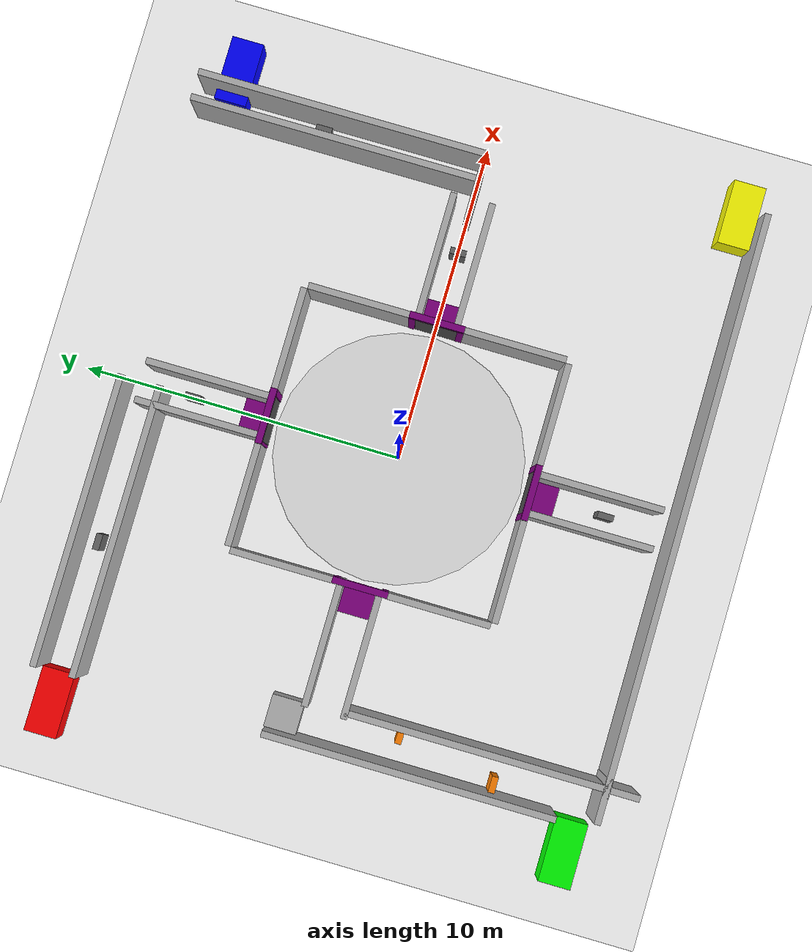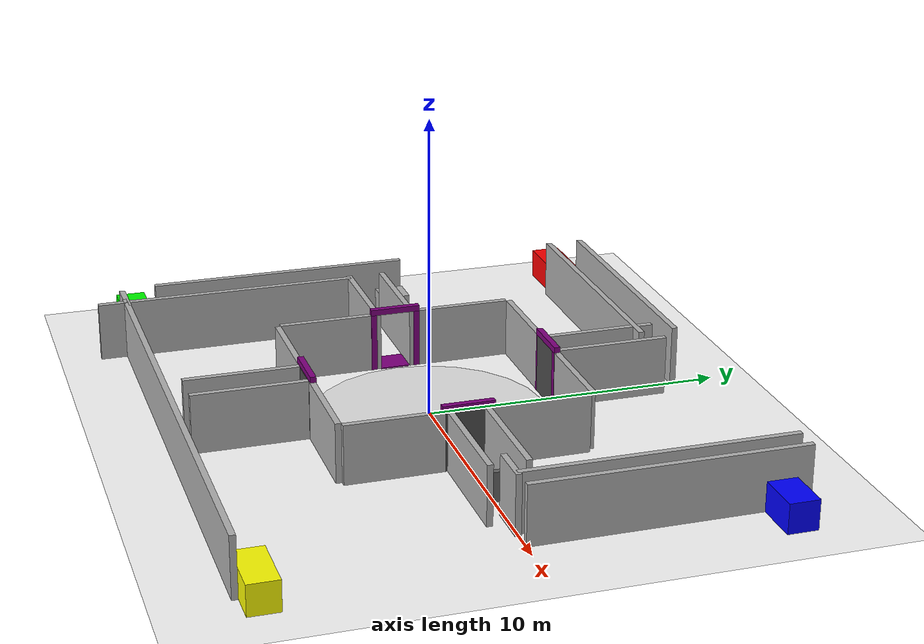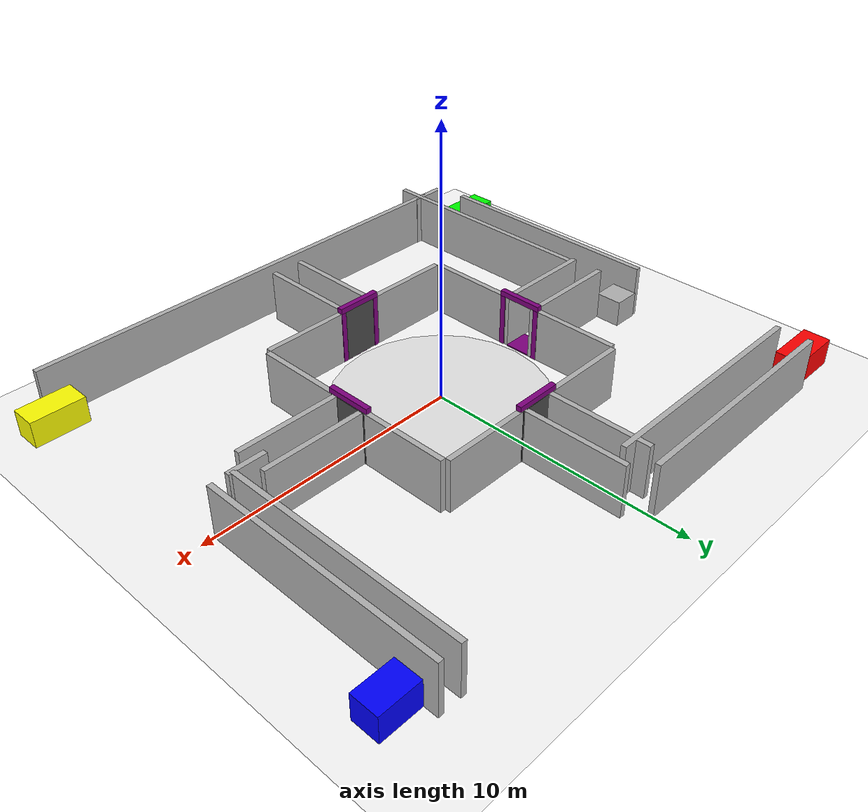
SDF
<?xml version="1.0" ?>
<sdf version='1.7'>
  <world name='laberinto_v1_world'>
    <plugin name='gz::sim::systems::Physics' filename='gz-sim-physics-system'/>
    <plugin name='gz::sim::systems::UserCommands' filename='gz-sim-user-commands-system'/>
    <plugin name='gz::sim::systems::SceneBroadcaster' filename='gz-sim-scene-broadcaster-system'/>
    <plugin name='gz::sim::systems::Imu' filename='gz-sim-imu-system'/>
    <plugin name='gz::sim::systems::Sensors' filename='gz-sim-sensors-system'>
      <render_engine>ogre2</render_engine>
    </plugin>
    <gravity>0 0 -9.8000000000000007</gravity>
    <magnetic_field>5.5644999999999998e-06 2.2875799999999999e-05 -4.2388400000000002e-05</magnetic_field>
    <atmosphere type='adiabatic'/>
    <physics type='ode'>
      <max_step_size>0.001</max_step_size>
      <real_time_factor>1</real_time_factor>
      <real_time_update_rate>1000</real_time_update_rate>
    </physics>
    <scene>
      <ambient>0.400000006 0.400000006 0.400000006 1</ambient>
      <background>0.699999988 0.699999988 0.699999988 1</background>
      <shadows>true</shadows>
    </scene>
    <model name='white_floor'>
      <static>true</static>
      <pose>0 0 0 0 0 0</pose>
      <link name='floor_link'>
        <collision name='collision'>
          <geometry>
            <plane>
              <normal>0 0 1</normal>
              <size>40 40</size>
            </plane>
          </geometry>
          <surface>
            <friction>
              <ode/>
            </friction>
            <bounce/>
            <contact/>
          </surface>
        </collision>
        <visual name='visual'>
          <geometry>
            <plane>
              <normal>0 0 1</normal>
              <size>40 40</size>
            </plane>
          </geometry>
          <material>
            <ambient>1 1 1 1</ambient>
            <diffuse>1 1 1 1</diffuse>
            <specular>0.100000001 0.100000001 0.100000001 1</specular>
          </material>
        </visual>
        <pose>0 0 0 0 0 0</pose>
        <inertial>
          <pose>0 0 0 0 0 0</pose>
          <mass>1</mass>
          <inertia>
            <ixx>1</ixx>
            <ixy>0</ixy>
            <ixz>0</ixz>
            <iyy>1</iyy>
            <iyz>0</iyz>
            <izz>1</izz>
          </inertia>
        </inertial>
        <enable_wind>false</enable_wind>
      </link>
      <self_collide>false</self_collide>
    </model>
    <model name='central_wall_north_left'>
      <static>true</static>
      <pose>-2.375 4.0999999999999996 1 0 0 0</pose>
      <link name='link'>
        <collision name='collision'>
          <geometry>
            <box>
              <size>3.25 0.20000000000000001 2</size>
            </box>
          </geometry>
          <surface>
            <friction>
              <ode/>
            </friction>
            <bounce/>
            <contact/>
          </surface>
        </collision>
        <visual name='visual'>
          <geometry>
            <box>
              <size>3.25 0.20000000000000001 2</size>
            </box>
          </geometry>
          <material>
            <ambient>0.699999988 0.699999988 0.699999988 1</ambient>
            <diffuse>0.699999988 0.699999988 0.699999988 1</diffuse>
          </material>
        </visual>
        <pose>0 0 0 0 0 0</pose>
        <inertial>
          <pose>0 0 0 0 0 0</pose>
          <mass>1</mass>
          <inertia>
            <ixx>1</ixx>
            <ixy>0</ixy>
            <ixz>0</ixz>
            <iyy>1</iyy>
            <iyz>0</iyz>
            <izz>1</izz>
          </inertia>
        </inertial>
        <enable_wind>false</enable_wind>
      </link>
      <self_collide>false</self_collide>
    </model>
    <model name='central_wall_north_right'>
      <static>true</static>
      <pose>2.375 4.0999999999999996 1 0 0 0</pose>
      <link name='link'>
        <collision name='collision'>
          <geometry>
            <box>
              <size>3.25 0.20000000000000001 2</size>
            </box>
          </geometry>
          <surface>
            <friction>
              <ode/>
            </friction>
            <bounce/>
            <contact/>
          </surface>
        </collision>
        <visual name='visual'>
          <geometry>
            <box>
              <size>3.25 0.20000000000000001 2</size>
            </box>
          </geometry>
          <material>
            <ambient>0.699999988 0.699999988 0.699999988 1</ambient>
            <diffuse>0.699999988 0.699999988 0.699999988 1</diffuse>
          </material>
        </visual>
        <pose>0 0 0 0 0 0</pose>
        <inertial>
          <pose>0 0 0 0 0 0</pose>
          <mass>1</mass>
          <inertia>
            <ixx>1</ixx>
            <ixy>0</ixy>
            <ixz>0</ixz>
            <iyy>1</iyy>
            <iyz>0</iyz>
            <izz>1</izz>
          </inertia>
        </inertial>
        <enable_wind>false</enable_wind>
      </link>
      <self_collide>false</self_collide>
    </model>
    <model name='central_wall_south_left'>
      <static>true</static>
      <pose>-2.375 -4.0999999999999996 1 0 0 0</pose>
      <link name='link'>
        <collision name='collision'>
          <geometry>
            <box>
              <size>3.25 0.20000000000000001 2</size>
            </box>
          </geometry>
          <surface>
            <friction>
              <ode/>
            </friction>
            <bounce/>
            <contact/>
          </surface>
        </collision>
        <visual name='visual'>
          <geometry>
            <box>
              <size>3.25 0.20000000000000001 2</size>
            </box>
          </geometry>
          <material>
            <ambient>0.699999988 0.699999988 0.699999988 1</ambient>
            <diffuse>0.699999988 0.699999988 0.699999988 1</diffuse>
          </material>
        </visual>
        <pose>0 0 0 0 0 0</pose>
        <inertial>
          <pose>0 0 0 0 0 0</pose>
          <mass>1</mass>
          <inertia>
            <ixx>1</ixx>
            <ixy>0</ixy>
            <ixz>0</ixz>
            <iyy>1</iyy>
            <iyz>0</iyz>
            <izz>1</izz>
          </inertia>
        </inertial>
        <enable_wind>false</enable_wind>
      </link>
      <self_collide>false</self_collide>
    </model>
    <model name='central_wall_south_right'>
      <static>true</static>
      <pose>2.375 -4.0999999999999996 1 0 0 0</pose>
      <link name='link'>
        <collision name='collision'>
          <geometry>
            <box>
              <size>3.25 0.20000000000000001 2</size>
            </box>
          </geometry>
          <surface>
            <friction>
              <ode/>
            </friction>
            <bounce/>
            <contact/>
          </surface>
        </collision>
        <visual name='visual'>
          <geometry>
            <box>
              <size>3.25 0.20000000000000001 2</size>
            </box>
          </geometry>
          <material>
            <ambient>0.699999988 0.699999988 0.699999988 1</ambient>
            <diffuse>0.699999988 0.699999988 0.699999988 1</diffuse>
          </material>
        </visual>
        <pose>0 0 0 0 0 0</pose>
        <inertial>
          <pose>0 0 0 0 0 0</pose>
          <mass>1</mass>
          <inertia>
            <ixx>1</ixx>
            <ixy>0</ixy>
            <ixz>0</ixz>
            <iyy>1</iyy>
            <iyz>0</iyz>
            <izz>1</izz>
          </inertia>
        </inertial>
        <enable_wind>false</enable_wind>
      </link>
      <self_collide>false</self_collide>
    </model>
    <model name='central_wall_east_bottom'>
      <static>true</static>
      <pose>4.0999999999999996 -2.375 1 0 0 0</pose>
      <link name='link'>
        <collision name='collision'>
          <geometry>
            <box>
              <size>0.20000000000000001 3.25 2</size>
            </box>
          </geometry>
          <surface>
            <friction>
              <ode/>
            </friction>
            <bounce/>
            <contact/>
          </surface>
        </collision>
        <visual name='visual'>
          <geometry>
            <box>
              <size>0.20000000000000001 3.25 2</size>
            </box>
          </geometry>
          <material>
            <ambient>0.699999988 0.699999988 0.699999988 1</ambient>
            <diffuse>0.699999988 0.699999988 0.699999988 1</diffuse>
          </material>
        </visual>
        <pose>0 0 0 0 0 0</pose>
        <inertial>
          <pose>0 0 0 0 0 0</pose>
          <mass>1</mass>
          <inertia>
            <ixx>1</ixx>
            <ixy>0</ixy>
            <ixz>0</ixz>
            <iyy>1</iyy>
            <iyz>0</iyz>
            <izz>1</izz>
          </inertia>
        </inertial>
        <enable_wind>false</enable_wind>
      </link>
      <self_collide>false</self_collide>
    </model>
    <model name='central_wall_east_top'>
      <static>true</static>
      <pose>4.0999999999999996 2.375 1 0 0 0</pose>
      <link name='link'>
        <collision name='collision'>
          <geometry>
            <box>
              <size>0.20000000000000001 3.25 2</size>
            </box>
          </geometry>
          <surface>
            <friction>
              <ode/>
            </friction>
            <bounce/>
            <contact/>
          </surface>
        </collision>
        <visual name='visual'>
          <geometry>
            <box>
              <size>0.20000000000000001 3.25 2</size>
            </box>
          </geometry>
          <material>
            <ambient>0.699999988 0.699999988 0.699999988 1</ambient>
            <diffuse>0.699999988 0.699999988 0.699999988 1</diffuse>
          </material>
        </visual>
        <pose>0 0 0 0 0 0</pose>
        <inertial>
          <pose>0 0 0 0 0 0</pose>
          <mass>1</mass>
          <inertia>
            <ixx>1</ixx>
            <ixy>0</ixy>
            <ixz>0</ixz>
            <iyy>1</iyy>
            <iyz>0</iyz>
            <izz>1</izz>
          </inertia>
        </inertial>
        <enable_wind>false</enable_wind>
      </link>
      <self_collide>false</self_collide>
    </model>
    <model name='central_wall_west_bottom'>
      <static>true</static>
      <pose>-4.0999999999999996 -2.375 1 0 0 0</pose>
      <link name='link'>
        <collision name='collision'>
          <geometry>
            <box>
              <size>0.20000000000000001 3.25 2</size>
            </box>
          </geometry>
          <surface>
            <friction>
              <ode/>
            </friction>
            <bounce/>
            <contact/>
          </surface>
        </collision>
        <visual name='visual'>
          <geometry>
            <box>
              <size>0.20000000000000001 3.25 2</size>
            </box>
          </geometry>
          <material>
            <ambient>0.699999988 0.699999988 0.699999988 1</ambient>
            <diffuse>0.699999988 0.699999988 0.699999988 1</diffuse>
          </material>
        </visual>
        <pose>0 0 0 0 0 0</pose>
        <inertial>
          <pose>0 0 0 0 0 0</pose>
          <mass>1</mass>
          <inertia>
            <ixx>1</ixx>
            <ixy>0</ixy>
            <ixz>0</ixz>
            <iyy>1</iyy>
            <iyz>0</iyz>
            <izz>1</izz>
          </inertia>
        </inertial>
        <enable_wind>false</enable_wind>
      </link>
      <self_collide>false</self_collide>
    </model>
    <model name='central_wall_west_top'>
      <static>true</static>
      <pose>-4.0999999999999996 2.375 1 0 0 0</pose>
      <link name='link'>
        <collision name='collision'>
          <geometry>
            <box>
              <size>0.20000000000000001 3.25 2</size>
            </box>
          </geometry>
          <surface>
            <friction>
              <ode/>
            </friction>
            <bounce/>
            <contact/>
          </surface>
        </collision>
        <visual name='visual'>
          <geometry>
            <box>
              <size>0.20000000000000001 3.25 2</size>
            </box>
          </geometry>
          <material>
            <ambient>0.699999988 0.699999988 0.699999988 1</ambient>
            <diffuse>0.699999988 0.699999988 0.699999988 1</diffuse>
          </material>
        </visual>
        <pose>0 0 0 0 0 0</pose>
        <inertial>
          <pose>0 0 0 0 0 0</pose>
          <mass>1</mass>
          <inertia>
            <ixx>1</ixx>
            <ixy>0</ixy>
            <ixz>0</ixz>
            <iyy>1</iyy>
            <iyz>0</iyz>
            <izz>1</izz>
          </inertia>
        </inertial>
        <enable_wind>false</enable_wind>
      </link>
      <self_collide>false</self_collide>
    </model>
    <model name='door_north'>
      <static>true</static>
      <pose>0 4.0999999046325684 1 0 0 1.5960153092038378</pose>
      <link name='link'>
        <collision name='collision'>
          <geometry>
            <box>
              <size>0.20000000000000001 1.5 2</size>
            </box>
          </geometry>
          <surface>
            <friction>
              <ode/>
            </friction>
            <bounce/>
            <contact/>
          </surface>
        </collision>
        <visual name='visual'>
          <geometry>
            <box>
              <size>0.20000000000000001 1.5 2</size>
            </box>
          </geometry>
          <material>
            <ambient>0.300000012 0.300000012 0.300000012 1</ambient>
            <diffuse>0.300000012 0.300000012 0.300000012 1</diffuse>
          </material>
        </visual>
        <pose>0 0 0 0 0 0</pose>
        <inertial>
          <pose>0 0 0 0 0 0</pose>
          <mass>1</mass>
          <inertia>
            <ixx>1</ixx>
            <ixy>0</ixy>
            <ixz>0</ixz>
            <iyy>1</iyy>
            <iyz>0</iyz>
            <izz>1</izz>
          </inertia>
        </inertial>
        <enable_wind>false</enable_wind>
      </link>
      <self_collide>false</self_collide>
    </model>
    <model name='door_south'>
      <static>true</static>
      <pose>0 -4.0999999046325684 1 0 0 1.5739049109720806</pose>
      <link name='link'>
        <collision name='collision'>
          <geometry>
            <box>
              <size>0.20000000000000001 1.5 2</size>
            </box>
          </geometry>
          <surface>
            <friction>
              <ode/>
            </friction>
            <bounce/>
            <contact/>
          </surface>
        </collision>
        <visual name='visual'>
          <geometry>
            <box>
              <size>0.20000000000000001 1.5 2</size>
            </box>
          </geometry>
          <material>
            <ambient>0.300000012 0.300000012 0.300000012 1</ambient>
            <diffuse>0.300000012 0.300000012 0.300000012 1</diffuse>
          </material>
        </visual>
        <pose>0 0 0 0 0 0</pose>
        <inertial>
          <pose>0 0 0 0 0 0</pose>
          <mass>1</mass>
          <inertia>
            <ixx>1</ixx>
            <ixy>0</ixy>
            <ixz>0</ixz>
            <iyy>1</iyy>
            <iyz>0</iyz>
            <izz>1</izz>
          </inertia>
        </inertial>
        <enable_wind>false</enable_wind>
      </link>
      <self_collide>false</self_collide>
    </model>
    <model name='door_east'>
      <static>true</static>
      <pose>4.0999999046325684 0 1 0 0 -0.011448291346638821</pose>
      <link name='link'>
        <collision name='collision'>
          <geometry>
            <box>
              <size>0.20000000000000001 1.5 2</size>
            </box>
          </geometry>
          <surface>
            <friction>
              <ode/>
            </friction>
            <bounce/>
            <contact/>
          </surface>
        </collision>
        <visual name='visual'>
          <geometry>
            <box>
              <size>0.20000000000000001 1.5 2</size>
            </box>
          </geometry>
          <material>
            <ambient>0.300000012 0.300000012 0.300000012 1</ambient>
            <diffuse>0.300000012 0.300000012 0.300000012 1</diffuse>
          </material>
        </visual>
        <pose>0 0 0 0 0 0</pose>
        <inertial>
          <pose>0 0 0 0 0 0</pose>
          <mass>1</mass>
          <inertia>
            <ixx>1</ixx>
            <ixy>0</ixy>
            <ixz>0</ixz>
            <iyy>1</iyy>
            <iyz>0</iyz>
            <izz>1</izz>
          </inertia>
        </inertial>
        <enable_wind>false</enable_wind>
      </link>
      <self_collide>false</self_collide>
    </model>
    <model name='central_room_floor_visual'>
      <static>true</static>
      <pose>0 0 0.01 0 0 0</pose>
      <link name='link'>
        <visual name='visual'>
          <geometry>
            <cylinder>
              <radius>3.8999999999999999</radius>
              <length>0.01</length>
            </cylinder>
          </geometry>
          <material>
            <ambient>0.899999976 0.899999976 0.899999976 1</ambient>
            <diffuse>0.899999976 0.899999976 0.899999976 1</diffuse>
          </material>
        </visual>
        <pose>0 0 0 0 0 0</pose>
        <inertial>
          <pose>0 0 0 0 0 0</pose>
          <mass>1</mass>
          <inertia>
            <ixx>1</ixx>
            <ixy>0</ixy>
            <ixz>0</ixz>
            <iyy>1</iyy>
            <iyz>0</iyz>
            <izz>1</izz>
          </inertia>
        </inertial>
        <enable_wind>false</enable_wind>
      </link>
      <self_collide>false</self_collide>
    </model>
    <model name='purple_carpet_north'>
      <static>true</static>
      <pose>0 4.5239 -0.0097 0 0 0</pose>
      <link name='link'>
        <collision name='collision'>
          <geometry>
            <box>
              <size>1.0 1.0 0.05</size>
            </box>
          </geometry>
          <surface>
            <friction>
              <ode/>
            </friction>
            <bounce/>
            <contact/>
          </surface>
        </collision>
        <visual name='visual'>
          <geometry>
            <box>
              <size>1.0 1.0 0.05</size>
            </box>
          </geometry>
          <material>
            <ambient>0.5 0 0.5 1</ambient>
            <diffuse>0.5 0 0.5 1</diffuse>
          </material>
        </visual>
        <pose>0 0 0 0 0 0</pose>
        <inertial>
          <pose>0 0 0 0 0 0</pose>
          <mass>1</mass>
          <inertia>
            <ixx>1</ixx>
            <ixy>0</ixy>
            <ixz>0</ixz>
            <iyy>1</iyy>
            <iyz>0</iyz>
            <izz>1</izz>
          </inertia>
        </inertial>
        <enable_wind>false</enable_wind>
      </link>
      <self_collide>false</self_collide>
    </model>
    <model name='purple_carpet_south'>
      <static>true</static>
      <pose>0 -4.5239 -0.0097 0 0 0</pose>
      <link name='link'>
        <collision name='collision'>
          <geometry>
            <box>
              <size>1.0 1.0 0.05</size>
            </box>
          </geometry>
          <surface>
            <friction>
              <ode/>
            </friction>
            <bounce/>
            <contact/>
          </surface>
        </collision>
        <visual name='visual'>
          <geometry>
            <box>
              <size>1.0 1.0 0.05</size>
            </box>
          </geometry>
          <material>
            <ambient>0.5 0 0.5 1</ambient>
            <diffuse>0.5 0 0.5 1</diffuse>
          </material>
        </visual>
        <pose>0 0 0 0 0 0</pose>
        <inertial>
          <pose>0 0 0 0 0 0</pose>
          <mass>1</mass>
          <inertia>
            <ixx>1</ixx>
            <ixy>0</ixy>
            <ixz>0</ixz>
            <iyy>1</iyy>
            <iyz>0</iyz>
            <izz>1</izz>
          </inertia>
        </inertial>
        <enable_wind>false</enable_wind>
      </link>
      <self_collide>false</self_collide>
    </model>
    <model name='purple_carpet_east'>
      <static>true</static>
      <pose>4.5239 0 -0.0097 0 0 0</pose>
      <link name='link'>
        <collision name='collision'>
          <geometry>
            <box>
              <size>1.0 1.0 0.05</size>
            </box>
          </geometry>
        </collision>
        <visual name='visual'>
          <geometry>
            <box>
              <size>1.0 1.0 0.05</size>
            </box>
          </geometry>
          <material>
            <ambient>0.5 0 0.5 1</ambient>
            <diffuse>0.5 0 0.5 1</diffuse>
          </material>
        </visual>
      </link>
      <self_collide>false</self_collide>
    </model>
    <model name='purple_carpet_west'>
      <static>true</static>
      <pose>-4.5239 0 -0.0097 0 0 0</pose>
      <link name='link'>
        <collision name='collision'>
          <geometry>
            <box>
              <size>1.0 1.0 0.05</size>
            </box>
          </geometry>
        </collision>
        <visual name='visual'>
          <geometry>
            <box>
              <size>1.0 1.0 0.05</size>
            </box>
          </geometry>
          <material>
            <ambient>0.5 0 0.5 1</ambient>
            <diffuse>0.5 0 0.5 1</diffuse>
          </material>
        </visual>
      </link>
      <self_collide>false</self_collide>
    </model>
    <model name='roman_arch_north'>
      <static>true</static>
      <pose>0 4.0841 0 0 0 0</pose>
      <link name='pillar_left'>
        <pose>-0.75 0 1.0 0 0 0</pose>
        <collision name='collision'>
          <geometry>
            <box>
              <size>0.2 0.2 2.0</size>
            </box>
          </geometry>
        </collision>
        <visual name='visual'>
          <geometry>
            <box>
              <size>0.2 0.2 2.0</size>
            </box>
          </geometry>
          <material>
            <ambient>0.5 0 0.5 1</ambient>
            <diffuse>0.5 0 0.5 1</diffuse>
          </material>
        </visual>
      </link>
      <link name='pillar_right'>
        <pose>0.75 0 1.0 0 0 0</pose>
        <collision name='collision'>
          <geometry>
            <box>
              <size>0.2 0.2 2.0</size>
            </box>
          </geometry>
        </collision>
        <visual name='visual'>
          <geometry>
            <box>
              <size>0.2 0.2 2.0</size>
            </box>
          </geometry>
          <material>
            <ambient>0.5 0 0.5 1</ambient>
            <diffuse>0.5 0 0.5 1</diffuse>
          </material>
        </visual>
      </link>
      <link name='arch_top'>
        <pose>0 0 2.1 0 0 0</pose>
        <collision name='collision'>
          <geometry>
            <box>
              <size>1.7 0.2 0.2</size>
            </box>
          </geometry>
        </collision>
        <visual name='visual'>
          <geometry>
            <box>
              <size>1.7 0.2 0.2</size>
            </box>
          </geometry>
          <material>
            <ambient>0.5 0 0.5 1</ambient>
            <diffuse>0.5 0 0.5 1</diffuse>
          </material>
        </visual>
      </link>
      <self_collide>false</self_collide>
    </model>
    <model name='roman_arch_south'>
      <static>true</static>
      <pose>0 -4.0841 0 0 0 0</pose>
      <link name='pillar_left'>
        <pose>-0.75 0 1.0 0 0 0</pose>
        <collision name='collision'>
          <geometry>
            <box>
              <size>0.2 0.2 2.0</size>
            </box>
          </geometry>
        </collision>
        <visual name='visual'>
          <geometry>
            <box>
              <size>0.2 0.2 2.0</size>
            </box>
          </geometry>
          <material>
            <ambient>0.5 0 0.5 1</ambient>
            <diffuse>0.5 0 0.5 1</diffuse>
          </material>
        </visual>
      </link>
      <link name='pillar_right'>
        <pose>0.75 0 1.0 0 0 0</pose>
        <collision name='collision'>
          <geometry>
            <box>
              <size>0.2 0.2 2.0</size>
            </box>
          </geometry>
        </collision>
        <visual name='visual'>
          <geometry>
            <box>
              <size>0.2 0.2 2.0</size>
            </box>
          </geometry>
          <material>
            <ambient>0.5 0 0.5 1</ambient>
            <diffuse>0.5 0 0.5 1</diffuse>
          </material>
        </visual>
      </link>
      <link name='arch_top'>
        <pose>0 0 2.1 0 0 0</pose>
        <collision name='collision'>
          <geometry>
            <box>
              <size>1.7 0.2 0.2</size>
            </box>
          </geometry>
        </collision>
        <visual name='visual'>
          <geometry>
            <box>
              <size>1.7 0.2 0.2</size>
            </box>
          </geometry>
          <material>
            <ambient>0.5 0 0.5 1</ambient>
            <diffuse>0.5 0 0.5 1</diffuse>
          </material>
        </visual>
      </link>
      <self_collide>false</self_collide>
    </model>
    <model name='roman_arch_east'>
      <static>true</static>
      <pose>4.0841 0 0 0 0 1.5708</pose>
      <link name='pillar_left'>
        <pose>-0.75 0 1.0 0 0 0</pose>
        <collision name='collision'>
          <geometry>
            <box>
              <size>0.2 0.2 2.0</size>
            </box>
          </geometry>
        </collision>
        <visual name='visual'>
          <geometry>
            <box>
              <size>0.2 0.2 2.0</size>
            </box>
          </geometry>
          <material>
            <ambient>0.5 0 0.5 1</ambient>
            <diffuse>0.5 0 0.5 1</diffuse>
          </material>
        </visual>
      </link>
      <link name='pillar_right'>
        <pose>0.75 0 1.0 0 0 0</pose>
        <collision name='collision'>
          <geometry>
            <box>
              <size>0.2 0.2 2.0</size>
            </box>
          </geometry>
        </collision>
        <visual name='visual'>
          <geometry>
            <box>
              <size>0.2 0.2 2.0</size>
            </box>
          </geometry>
          <material>
            <ambient>0.5 0 0.5 1</ambient>
            <diffuse>0.5 0 0.5 1</diffuse>
          </material>
        </visual>
      </link>
      <link name='arch_top'>
        <pose>0 0 2.1 0 0 0</pose>
        <collision name='collision'>
          <geometry>
            <box>
              <size>1.7 0.2 0.2</size>
            </box>
          </geometry>
        </collision>
        <visual name='visual'>
          <geometry>
            <box>
              <size>1.7 0.2 0.2</size>
            </box>
          </geometry>
          <material>
            <ambient>0.5 0 0.5 1</ambient>
            <diffuse>0.5 0 0.5 1</diffuse>
          </material>
        </visual>
      </link>
      <self_collide>false</self_collide>
    </model>
    <model name='roman_arch_west'>
      <static>true</static>
      <pose>-4.0841 0 0 0 0 1.5708</pose>
      <link name='pillar_left'>
        <pose>-0.75 0 1.0 0 0 0</pose>
        <collision name='collision'>
          <geometry>
            <box>
              <size>0.2 0.2 2.0</size>
            </box>
          </geometry>
        </collision>
        <visual name='visual'>
          <geometry>
            <box>
              <size>0.2 0.2 2.0</size>
            </box>
          </geometry>
          <material>
            <ambient>0.5 0 0.5 1</ambient>
            <diffuse>0.5 0 0.5 1</diffuse>
          </material>
        </visual>
      </link>
      <link name='pillar_right'>
        <pose>0.75 0 1.0 0 0 0</pose>
        <collision name='collision'>
          <geometry>
            <box>
              <size>0.2 0.2 2.0</size>
            </box>
          </geometry>
        </collision>
        <visual name='visual'>
          <geometry>
            <box>
              <size>0.2 0.2 2.0</size>
            </box>
          </geometry>
          <material>
            <ambient>0.5 0 0.5 1</ambient>
            <diffuse>0.5 0 0.5 1</diffuse>
          </material>
        </visual>
      </link>
      <link name='arch_top'>
        <pose>0 0 2.1 0 0 0</pose>
        <collision name='collision'>
          <geometry>
            <box>
              <size>1.7 0.2 0.2</size>
            </box>
          </geometry>
        </collision>
        <visual name='visual'>
          <geometry>
            <box>
              <size>1.7 0.2 0.2</size>
            </box>
          </geometry>
          <material>
            <ambient>0.5 0 0.5 1</ambient>
            <diffuse>0.5 0 0.5 1</diffuse>
          </material>
        </visual>
      </link>
      <self_collide>false</self_collide>
    </model>
    <model name='hall_N_seg1_wall_W'>
      <static>true</static>
      <pose>-0.59999999999999998 6.0499999999999998 1 0 0 0</pose>
      <link name='link'>
        <collision name='collision'>
          <geometry>
            <box>
              <size>0.20000000000000001 3.8999999999999999 2</size>
            </box>
          </geometry>
          <surface>
            <friction>
              <ode/>
            </friction>
            <bounce/>
            <contact/>
          </surface>
        </collision>
        <visual name='visual'>
          <geometry>
            <box>
              <size>0.20000000000000001 3.8999999999999999 2</size>
            </box>
          </geometry>
          <material>
            <ambient>0.699999988 0.699999988 0.699999988 1</ambient>
            <diffuse>0.699999988 0.699999988 0.699999988 1</diffuse>
          </material>
        </visual>
        <pose>0 0 0 0 0 0</pose>
        <inertial>
          <pose>0 0 0 0 0 0</pose>
          <mass>1</mass>
          <inertia>
            <ixx>1</ixx>
            <ixy>0</ixy>
            <ixz>0</ixz>
            <iyy>1</iyy>
            <iyz>0</iyz>
            <izz>1</izz>
          </inertia>
        </inertial>
        <enable_wind>false</enable_wind>
      </link>
      <self_collide>false</self_collide>
    </model>
    <model name='hall_N_seg1_wall_E'>
      <static>true</static>
      <pose>0.59999999999999998 6.0499999999999998 1 0 0 0</pose>
      <link name='link'>
        <collision name='collision'>
          <geometry>
            <box>
              <size>0.20000000000000001 3.8999999999999999 2</size>
            </box>
          </geometry>
          <surface>
            <friction>
              <ode/>
            </friction>
            <bounce/>
            <contact/>
          </surface>
        </collision>
        <visual name='visual'>
          <geometry>
            <box>
              <size>0.20000000000000001 3.8999999999999999 2</size>
            </box>
          </geometry>
          <material>
            <ambient>0.699999988 0.699999988 0.699999988 1</ambient>
            <diffuse>0.699999988 0.699999988 0.699999988 1</diffuse>
          </material>
        </visual>
        <pose>0 0 0 0 0 0</pose>
        <inertial>
          <pose>0 0 0 0 0 0</pose>
          <mass>1</mass>
          <inertia>
            <ixx>1</ixx>
            <ixy>0</ixy>
            <ixz>0</ixz>
            <iyy>1</iyy>
            <iyz>0</iyz>
            <izz>1</izz>
          </inertia>
        </inertial>
        <enable_wind>false</enable_wind>
      </link>
      <self_collide>false</self_collide>
    </model>
    <model name='hall_N_obs1'>
      <static>true</static>
      <pose>0 6.5 0.5 0 0 0</pose>
      <link name='link'>
        <collision name='collision'>
          <geometry>
            <box>
              <size>0.20000000000000001 0.5 1</size>
            </box>
          </geometry>
          <surface>
            <friction>
              <ode/>
            </friction>
            <bounce/>
            <contact/>
          </surface>
        </collision>
        <visual name='visual'>
          <geometry>
            <box>
              <size>0.20000000000000001 0.5 1</size>
            </box>
          </geometry>
          <material>
            <ambient>0.400000006 0.400000006 0.400000006 1</ambient>
            <diffuse>0.400000006 0.400000006 0.400000006 1</diffuse>
          </material>
        </visual>
        <pose>0 0 0 0 0 0</pose>
        <inertial>
          <pose>0 0 0 0 0 0</pose>
          <mass>1</mass>
          <inertia>
            <ixx>1</ixx>
            <ixy>0</ixy>
            <ixz>0</ixz>
            <iyy>1</iyy>
            <iyz>0</iyz>
            <izz>1</izz>
          </inertia>
        </inertial>
        <enable_wind>false</enable_wind>
      </link>
      <self_collide>false</self_collide>
    </model>
    <model name='hall_N_seg2_wall_N'>
      <static>true</static>
      <pose>-4.5 8.5999999999999996 1 0 0 0</pose>
      <link name='link'>
        <collision name='collision'>
          <geometry>
            <box>
              <size>9 0.20000000000000001 2</size>
            </box>
          </geometry>
          <surface>
            <friction>
              <ode/>
            </friction>
            <bounce/>
            <contact/>
          </surface>
        </collision>
        <visual name='visual'>
          <geometry>
            <box>
              <size>9 0.20000000000000001 2</size>
            </box>
          </geometry>
          <material>
            <ambient>0.699999988 0.699999988 0.699999988 1</ambient>
            <diffuse>0.699999988 0.699999988 0.699999988 1</diffuse>
          </material>
        </visual>
        <pose>0 0 0 0 0 0</pose>
        <inertial>
          <pose>0 0 0 0 0 0</pose>
          <mass>1</mass>
          <inertia>
            <ixx>1</ixx>
            <ixy>0</ixy>
            <ixz>0</ixz>
            <iyy>1</iyy>
            <iyz>0</iyz>
            <izz>1</izz>
          </inertia>
        </inertial>
        <enable_wind>false</enable_wind>
      </link>
      <self_collide>false</self_collide>
    </model>
    <model name='hall_N_seg2_wall_S'>
      <static>true</static>
      <pose>-4.5 7.4000000000000004 1 0 0 0</pose>
      <link name='link'>
        <collision name='collision'>
          <geometry>
            <box>
              <size>9 0.20000000000000001 2</size>
            </box>
          </geometry>
          <surface>
            <friction>
              <ode/>
            </friction>
            <bounce/>
            <contact/>
          </surface>
        </collision>
        <visual name='visual'>
          <geometry>
            <box>
              <size>9 0.20000000000000001 2</size>
            </box>
          </geometry>
          <material>
            <ambient>0.699999988 0.699999988 0.699999988 1</ambient>
            <diffuse>0.699999988 0.699999988 0.699999988 1</diffuse>
          </material>
        </visual>
        <pose>0 0 0 0 0 0</pose>
        <inertial>
          <pose>0 0 0 0 0 0</pose>
          <mass>1</mass>
          <inertia>
            <ixx>1</ixx>
            <ixy>0</ixy>
            <ixz>0</ixz>
            <iyy>1</iyy>
            <iyz>0</iyz>
            <izz>1</izz>
          </inertia>
        </inertial>
        <enable_wind>false</enable_wind>
      </link>
      <self_collide>false</self_collide>
    </model>
    <model name='hall_N_obs2'>
      <static>true</static>
      <pose>-5 8 0.5 0 0 0</pose>
      <link name='link'>
        <collision name='collision'>
          <geometry>
            <box>
              <size>0.5 0.20000000000000001 1</size>
            </box>
          </geometry>
          <surface>
            <friction>
              <ode/>
            </friction>
            <bounce/>
            <contact/>
          </surface>
        </collision>
        <visual name='visual'>
          <geometry>
            <box>
              <size>0.5 0.20000000000000001 1</size>
            </box>
          </geometry>
          <material>
            <ambient>0.400000006 0.400000006 0.400000006 1</ambient>
            <diffuse>0.400000006 0.400000006 0.400000006 1</diffuse>
          </material>
        </visual>
        <pose>0 0 0 0 0 0</pose>
        <inertial>
          <pose>0 0 0 0 0 0</pose>
          <mass>1</mass>
          <inertia>
            <ixx>1</ixx>
            <ixy>0</ixy>
            <ixz>0</ixz>
            <iyy>1</iyy>
            <iyz>0</iyz>
            <izz>1</izz>
          </inertia>
        </inertial>
        <enable_wind>false</enable_wind>
      </link>
      <self_collide>false</self_collide>
    </model>
    <model name='hall_E_seg1_wall_S'>
      <static>true</static>
      <pose>6.0499999999999998 -0.59999999999999998 1 0 0 0</pose>
      <link name='link'>
        <collision name='collision'>
          <geometry>
            <box>
              <size>3.8999999999999999 0.20000000000000001 2</size>
            </box>
          </geometry>
          <surface>
            <friction>
              <ode/>
            </friction>
            <bounce/>
            <contact/>
          </surface>
        </collision>
        <visual name='visual'>
          <geometry>
            <box>
              <size>3.8999999999999999 0.20000000000000001 2</size>
            </box>
          </geometry>
          <material>
            <ambient>0.699999988 0.699999988 0.699999988 1</ambient>
            <diffuse>0.699999988 0.699999988 0.699999988 1</diffuse>
          </material>
        </visual>
        <pose>0 0 0 0 0 0</pose>
        <inertial>
          <pose>0 0 0 0 0 0</pose>
          <mass>1</mass>
          <inertia>
            <ixx>1</ixx>
            <ixy>0</ixy>
            <ixz>0</ixz>
            <iyy>1</iyy>
            <iyz>0</iyz>
            <izz>1</izz>
          </inertia>
        </inertial>
        <enable_wind>false</enable_wind>
      </link>
      <self_collide>false</self_collide>
    </model>
    <model name='hall_E_seg1_wall_N'>
      <static>true</static>
      <pose>6.0499999999999998 0.59999999999999998 1 0 0 0</pose>
      <link name='link'>
        <collision name='collision'>
          <geometry>
            <box>
              <size>3.8999999999999999 0.20000000000000001 2</size>
            </box>
          </geometry>
          <surface>
            <friction>
              <ode/>
            </friction>
            <bounce/>
            <contact/>
          </surface>
        </collision>
        <visual name='visual'>
          <geometry>
            <box>
              <size>3.8999999999999999 0.20000000000000001 2</size>
            </box>
          </geometry>
          <material>
            <ambient>0.699999988 0.699999988 0.699999988 1</ambient>
            <diffuse>0.699999988 0.699999988 0.699999988 1</diffuse>
          </material>
        </visual>
        <pose>0 0 0 0 0 0</pose>
        <inertial>
          <pose>0 0 0 0 0 0</pose>
          <mass>1</mass>
          <inertia>
            <ixx>1</ixx>
            <ixy>0</ixy>
            <ixz>0</ixz>
            <iyy>1</iyy>
            <iyz>0</iyz>
            <izz>1</izz>
          </inertia>
        </inertial>
        <enable_wind>false</enable_wind>
      </link>
      <self_collide>false</self_collide>
    </model>
    <model name='hall_E_obs1'>
      <static>true</static>
      <pose>6.5 0 0.5 0 0 1.5708000000000006</pose>
      <link name='link'>
        <collision name='collision'>
          <geometry>
            <box>
              <size>0.5 0.20000000000000001 1</size>
            </box>
          </geometry>
          <surface>
            <friction>
              <ode/>
            </friction>
            <bounce/>
            <contact/>
          </surface>
        </collision>
        <visual name='visual'>
          <geometry>
            <box>
              <size>0.5 0.20000000000000001 1</size>
            </box>
          </geometry>
          <material>
            <ambient>0.400000006 0.400000006 0.400000006 1</ambient>
            <diffuse>0.400000006 0.400000006 0.400000006 1</diffuse>
          </material>
        </visual>
        <pose>0 0 0 0 0 0</pose>
        <inertial>
          <pose>0 0 0 0 0 0</pose>
          <mass>1</mass>
          <inertia>
            <ixx>1</ixx>
            <ixy>0</ixy>
            <ixz>0</ixz>
            <iyy>1</iyy>
            <iyz>0</iyz>
            <izz>1</izz>
          </inertia>
        </inertial>
        <enable_wind>false</enable_wind>
      </link>
      <self_collide>false</self_collide>
    </model>
    <model name='hall_E_turn_wall_E'>
      <static>true</static>
      <pose>8.0999999999999996 0 1 0 0 1.5708000000000006</pose>
      <link name='link'>
        <collision name='collision'>
          <geometry>
            <box>
              <size>0.20000000000000001 1.3999999999999999 2</size>
            </box>
          </geometry>
          <surface>
            <friction>
              <ode/>
            </friction>
            <bounce/>
            <contact/>
          </surface>
        </collision>
        <visual name='visual'>
          <geometry>
            <box>
              <size>0.20000000000000001 1.3999999999999999 2</size>
            </box>
          </geometry>
          <material>
            <ambient>0.699999988 0.699999988 0.699999988 1</ambient>
            <diffuse>0.699999988 0.699999988 0.699999988 1</diffuse>
          </material>
        </visual>
        <pose>0 0 0 0 0 0</pose>
        <inertial>
          <pose>0 0 0 0 0 0</pose>
          <mass>1</mass>
          <inertia>
            <ixx>1</ixx>
            <ixy>0</ixy>
            <ixz>0</ixz>
            <iyy>1</iyy>
            <iyz>0</iyz>
            <izz>1</izz>
          </inertia>
        </inertial>
        <enable_wind>false</enable_wind>
      </link>
      <self_collide>false</self_collide>
    </model>
    <model name='hall_E_seg2_wall_W'>
      <static>true</static>
      <pose>8.5999999999999996 4.5 1 0 0 0</pose>
      <link name='link'>
        <collision name='collision'>
          <geometry>
            <box>
              <size>0.20000000000000001 9 2</size>
            </box>
          </geometry>
          <surface>
            <friction>
              <ode/>
            </friction>
            <bounce/>
            <contact/>
          </surface>
        </collision>
        <visual name='visual'>
          <geometry>
            <box>
              <size>0.20000000000000001 9 2</size>
            </box>
          </geometry>
          <material>
            <ambient>0.699999988 0.699999988 0.699999988 1</ambient>
            <diffuse>0.699999988 0.699999988 0.699999988 1</diffuse>
          </material>
        </visual>
        <pose>0 0 0 0 0 0</pose>
        <inertial>
          <pose>0 0 0 0 0 0</pose>
          <mass>1</mass>
          <inertia>
            <ixx>1</ixx>
            <ixy>0</ixy>
            <ixz>0</ixz>
            <iyy>1</iyy>
            <iyz>0</iyz>
            <izz>1</izz>
          </inertia>
        </inertial>
        <enable_wind>false</enable_wind>
      </link>
      <self_collide>false</self_collide>
    </model>
    <model name='hall_E_seg2_wall_E'>
      <static>true</static>
      <pose>9.4000000000000004 4.5 1 0 0 0</pose>
      <link name='link'>
        <collision name='collision'>
          <geometry>
            <box>
              <size>0.20000000000000001 9 2</size>
            </box>
          </geometry>
          <surface>
            <friction>
              <ode/>
            </friction>
            <bounce/>
            <contact/>
          </surface>
        </collision>
        <visual name='visual'>
          <geometry>
            <box>
              <size>0.20000000000000001 9 2</size>
            </box>
          </geometry>
          <material>
            <ambient>0.699999988 0.699999988 0.699999988 1</ambient>
            <diffuse>0.699999988 0.699999988 0.699999988 1</diffuse>
          </material>
        </visual>
        <pose>0 0 0 0 0 0</pose>
        <inertial>
          <pose>0 0 0 0 0 0</pose>
          <mass>1</mass>
          <inertia>
            <ixx>1</ixx>
            <ixy>0</ixy>
            <ixz>0</ixz>
            <iyy>1</iyy>
            <iyz>0</iyz>
            <izz>1</izz>
          </inertia>
        </inertial>
        <enable_wind>false</enable_wind>
      </link>
      <self_collide>false</self_collide>
    </model>
    <model name='hall_E_obs2'>
      <static>true</static>
      <pose>9 5 0.5 0 0 1.5708000000000006</pose>
      <link name='link'>
        <collision name='collision'>
          <geometry>
            <box>
              <size>0.5 0.20000000000000001 1</size>
            </box>
          </geometry>
          <surface>
            <friction>
              <ode/>
            </friction>
            <bounce/>
            <contact/>
          </surface>
        </collision>
        <visual name='visual'>
          <geometry>
            <box>
              <size>0.5 0.20000000000000001 1</size>
            </box>
          </geometry>
          <material>
            <ambient>0.400000006 0.400000006 0.400000006 1</ambient>
            <diffuse>0.400000006 0.400000006 0.400000006 1</diffuse>
          </material>
        </visual>
        <pose>0 0 0 0 0 0</pose>
        <inertial>
          <pose>0 0 0 0 0 0</pose>
          <mass>1</mass>
          <inertia>
            <ixx>1</ixx>
            <ixy>0</ixy>
            <ixz>0</ixz>
            <iyy>1</iyy>
            <iyz>0</iyz>
            <izz>1</izz>
          </inertia>
        </inertial>
        <enable_wind>false</enable_wind>
      </link>
      <self_collide>false</self_collide>
    </model>
    <model name='hall_S_seg1_wall_W'>
      <static>true</static>
      <pose>-0.59999999999999998 -6.0499999999999998 1 0 0 0</pose>
      <link name='link'>
        <collision name='collision'>
          <geometry>
            <box>
              <size>0.20000000000000001 3.8999999999999999 2</size>
            </box>
          </geometry>
          <surface>
            <friction>
              <ode/>
            </friction>
            <bounce/>
            <contact/>
          </surface>
        </collision>
        <visual name='visual'>
          <geometry>
            <box>
              <size>0.20000000000000001 3.8999999999999999 2</size>
            </box>
          </geometry>
          <material>
            <ambient>0.699999988 0.699999988 0.699999988 1</ambient>
            <diffuse>0.699999988 0.699999988 0.699999988 1</diffuse>
          </material>
        </visual>
        <pose>0 0 0 0 0 0</pose>
        <inertial>
          <pose>0 0 0 0 0 0</pose>
          <mass>1</mass>
          <inertia>
            <ixx>1</ixx>
            <ixy>0</ixy>
            <ixz>0</ixz>
            <iyy>1</iyy>
            <iyz>0</iyz>
            <izz>1</izz>
          </inertia>
        </inertial>
        <enable_wind>false</enable_wind>
      </link>
      <self_collide>false</self_collide>
    </model>
    <model name='hall_S_seg1_wall_E'>
      <static>true</static>
      <pose>0.59999999999999998 -6.0499999999999998 1 0 0 0</pose>
      <link name='link'>
        <collision name='collision'>
          <geometry>
            <box>
              <size>0.20000000000000001 3.8999999999999999 2</size>
            </box>
          </geometry>
          <surface>
            <friction>
              <ode/>
            </friction>
            <bounce/>
            <contact/>
          </surface>
        </collision>
        <visual name='visual'>
          <geometry>
            <box>
              <size>0.20000000000000001 3.8999999999999999 2</size>
            </box>
          </geometry>
          <material>
            <ambient>0.699999988 0.699999988 0.699999988 1</ambient>
            <diffuse>0.699999988 0.699999988 0.699999988 1</diffuse>
          </material>
        </visual>
        <pose>0 0 0 0 0 0</pose>
        <inertial>
          <pose>0 0 0 0 0 0</pose>
          <mass>1</mass>
          <inertia>
            <ixx>1</ixx>
            <ixy>0</ixy>
            <ixz>0</ixz>
            <iyy>1</iyy>
            <iyz>0</iyz>
            <izz>1</izz>
          </inertia>
        </inertial>
        <enable_wind>false</enable_wind>
      </link>
      <self_collide>false</self_collide>
    </model>
    <model name='hall_S_obs1'>
      <static>true</static>
      <pose>0 -6.5 0.5 0 0 0</pose>
      <link name='link'>
        <collision name='collision'>
          <geometry>
            <box>
              <size>0.20000000000000001 0.5 1</size>
            </box>
          </geometry>
          <surface>
            <friction>
              <ode/>
            </friction>
            <bounce/>
            <contact/>
          </surface>
        </collision>
        <visual name='visual'>
          <geometry>
            <box>
              <size>0.20000000000000001 0.5 1</size>
            </box>
          </geometry>
          <material>
            <ambient>0.400000006 0.400000006 0.400000006 1</ambient>
            <diffuse>0.400000006 0.400000006 0.400000006 1</diffuse>
          </material>
        </visual>
        <pose>0 0 0 0 0 0</pose>
        <inertial>
          <pose>0 0 0 0 0 0</pose>
          <mass>1</mass>
          <inertia>
            <ixx>1</ixx>
            <ixy>0</ixy>
            <ixz>0</ixz>
            <iyy>1</iyy>
            <iyz>0</iyz>
            <izz>1</izz>
          </inertia>
        </inertial>
        <enable_wind>false</enable_wind>
      </link>
      <self_collide>false</self_collide>
    </model>
    <model name='hall_S_obs2'>
      <static>true</static>
      <pose>-8.6491069793701172 -5.4519743919372559 0.5 0 0 -3.1359699999780681</pose>
      <link name='link'>
        <collision name='collision'>
          <geometry>
            <box>
              <size>0.5 0.20000000000000001 1</size>
            </box>
          </geometry>
          <surface>
            <friction>
              <ode/>
            </friction>
            <bounce/>
            <contact/>
          </surface>
        </collision>
        <visual name='visual'>
          <geometry>
            <box>
              <size>0.5 0.20000000000000001 1</size>
            </box>
          </geometry>
          <material>
            <ambient>1 0.5 0 1</ambient>
            <diffuse>1 0.5 0 1</diffuse>
          </material>
        </visual>
        <pose>0 0 0 0 0 0</pose>
        <inertial>
          <pose>0 0 0 0 0 0</pose>
          <mass>1</mass>
          <inertia>
            <ixx>1</ixx>
            <ixy>0</ixy>
            <ixz>0</ixz>
            <iyy>1</iyy>
            <iyz>0</iyz>
            <izz>1</izz>
          </inertia>
        </inertial>
        <enable_wind>false</enable_wind>
      </link>
      <self_collide>false</self_collide>
    </model>
    <model name='hall_W_seg1_wall_S'>
      <static>true</static>
      <pose>-5.9732098579406738 -0.60000002384185791 1 0 0 0</pose>
      <link name='link'>
        <collision name='collision'>
          <geometry>
            <box>
              <size>3.8999999999999999 0.20000000000000001 2</size>
            </box>
          </geometry>
          <surface>
            <friction>
              <ode/>
            </friction>
            <bounce/>
            <contact/>
          </surface>
        </collision>
        <visual name='visual'>
          <geometry>
            <box>
              <size>3.8999999999999999 0.20000000000000001 2</size>
            </box>
          </geometry>
          <material>
            <ambient>0.699999988 0.699999988 0.699999988 1</ambient>
            <diffuse>0.699999988 0.699999988 0.699999988 1</diffuse>
          </material>
        </visual>
        <pose>0 0 0 0 0 0</pose>
        <inertial>
          <pose>0 0 0 0 0 0</pose>
          <mass>1</mass>
          <inertia>
            <ixx>1</ixx>
            <ixy>0</ixy>
            <ixz>0</ixz>
            <iyy>1</iyy>
            <iyz>0</iyz>
            <izz>1</izz>
          </inertia>
        </inertial>
        <enable_wind>false</enable_wind>
      </link>
      <self_collide>false</self_collide>
    </model>
    <model name='hall_W_seg1_wall_N'>
      <static>true</static>
      <pose>-5.9408130645751953 0.60000002384185791 1 0 0 0</pose>
      <link name='link'>
        <collision name='collision'>
          <geometry>
            <box>
              <size>3.8999999999999999 0.20000000000000001 2</size>
            </box>
          </geometry>
          <surface>
            <friction>
              <ode/>
            </friction>
            <bounce/>
            <contact/>
          </surface>
        </collision>
        <visual name='visual'>
          <geometry>
            <box>
              <size>3.8999999999999999 0.20000000000000001 2</size>
            </box>
          </geometry>
          <material>
            <ambient>0.699999988 0.699999988 0.699999988 1</ambient>
            <diffuse>0.699999988 0.699999988 0.699999988 1</diffuse>
          </material>
        </visual>
        <pose>0 0 0 0 0 0</pose>
        <inertial>
          <pose>0 0 0 0 0 0</pose>
          <mass>1</mass>
          <inertia>
            <ixx>1</ixx>
            <ixy>0</ixy>
            <ixz>0</ixz>
            <iyy>1</iyy>
            <iyz>0</iyz>
            <izz>1</izz>
          </inertia>
        </inertial>
        <enable_wind>false</enable_wind>
      </link>
      <self_collide>false</self_collide>
    </model>
    <model name='hall_W_turn_wall_W'>
      <static>true</static>
      <pose>-8.0999689102172852 -8.5878210067749023 1 0 0 1.5708000357176291</pose>
      <link name='link'>
        <collision name='collision'>
          <geometry>
            <box>
              <size>0.20000000000000001 1.3999999999999999 2</size>
            </box>
          </geometry>
          <surface>
            <friction>
              <ode/>
            </friction>
            <bounce/>
            <contact/>
          </surface>
        </collision>
        <visual name='visual'>
          <geometry>
            <box>
              <size>0.20000000000000001 1.3999999999999999 2</size>
            </box>
          </geometry>
          <material>
            <ambient>0.699999988 0.699999988 0.699999988 1</ambient>
            <diffuse>0.699999988 0.699999988 0.699999988 1</diffuse>
          </material>
        </visual>
        <pose>0 0 0 0 0 0</pose>
        <inertial>
          <pose>0 0 0 0 0 0</pose>
          <mass>1</mass>
          <inertia>
            <ixx>1</ixx>
            <ixy>0</ixy>
            <ixz>0</ixz>
            <iyy>1</iyy>
            <iyz>0</iyz>
            <izz>1</izz>
          </inertia>
        </inertial>
        <enable_wind>false</enable_wind>
      </link>
      <self_collide>false</self_collide>
    </model>
    <model name='hall_W_seg2_wall_W'>
      <static>true</static>
      <pose>-8.9993667602539062 -2.9001901149749756 1 0 0 0</pose>
      <link name='link'>
        <collision name='collision'>
          <geometry>
            <box>
              <size>0.20000000000000001 9 2</size>
            </box>
          </geometry>
          <surface>
            <friction>
              <ode/>
            </friction>
            <bounce/>
            <contact/>
          </surface>
        </collision>
        <visual name='visual'>
          <geometry>
            <box>
              <size>0.20000000000000001 9 2</size>
            </box>
          </geometry>
          <material>
            <ambient>0.699999988 0.699999988 0.699999988 1</ambient>
            <diffuse>0.699999988 0.699999988 0.699999988 1</diffuse>
          </material>
        </visual>
        <pose>0 0 0 0 0 0</pose>
        <inertial>
          <pose>0 0 0 0 0 0</pose>
          <mass>1</mass>
          <inertia>
            <ixx>1</ixx>
            <ixy>0</ixy>
            <ixz>0</ixz>
            <iyy>1</iyy>
            <iyz>0</iyz>
            <izz>1</izz>
          </inertia>
        </inertial>
        <enable_wind>false</enable_wind>
      </link>
      <self_collide>false</self_collide>
    </model>
    <model name='hall_W_seg2_wall_E'>
      <static>true</static>
      <pose>-7.7313275337219238 -5.0895299911499023 1 0 0 0</pose>
      <link name='link'>
        <collision name='collision'>
          <geometry>
            <box>
              <size>0.20000000000000001 9 2</size>
            </box>
          </geometry>
          <surface>
            <friction>
              <ode/>
            </friction>
            <bounce/>
            <contact/>
          </surface>
        </collision>
        <visual name='visual'>
          <geometry>
            <box>
              <size>0.20000000000000001 9 2</size>
            </box>
          </geometry>
          <material>
            <ambient>0.699999988 0.699999988 0.699999988 1</ambient>
            <diffuse>0.699999988 0.699999988 0.699999988 1</diffuse>
          </material>
        </visual>
        <pose>0 0 0 0 0 0</pose>
        <inertial>
          <pose>0 0 0 0 0 0</pose>
          <mass>1</mass>
          <inertia>
            <ixx>1</ixx>
            <ixy>0</ixy>
            <ixz>0</ixz>
            <iyy>1</iyy>
            <iyz>0</iyz>
            <izz>1</izz>
          </inertia>
        </inertial>
        <enable_wind>false</enable_wind>
      </link>
      <self_collide>false</self_collide>
    </model>
    <model name='hall_W_obs2'>
      <static>true</static>
      <pose>-8.031672477722168 -2.3726372718811035 0.5 0 0 3.1214099998024674</pose>
      <link name='link'>
        <collision name='collision'>
          <geometry>
            <box>
              <size>0.5 0.20000000000000001 1</size>
            </box>
          </geometry>
          <surface>
            <friction>
              <ode/>
            </friction>
            <bounce/>
            <contact/>
          </surface>
        </collision>
        <visual name='visual'>
          <geometry>
            <box>
              <size>0.5 0.20000000000000001 1</size>
            </box>
          </geometry>
          <material>
            <ambient>1 0.5 0 1</ambient>
            <diffuse>1 0.5 0 1</diffuse>
          </material>
        </visual>
        <pose>0 0 0 0 0 0</pose>
        <inertial>
          <pose>0 0 0 0 0 0</pose>
          <mass>1</mass>
          <inertia>
            <ixx>1</ixx>
            <ixy>0</ixy>
            <ixz>0</ixz>
            <iyy>1</iyy>
            <iyz>0</iyz>
            <izz>1</izz>
          </inertia>
        </inertial>
        <enable_wind>false</enable_wind>
      </link>
      <self_collide>false</self_collide>
    </model>
    <model name='hall_W_seg3_wall_S'>
      <static>true</static>
      <pose>1 -8.5999999999999996 1 0 0 0</pose>
      <link name='link'>
        <collision name='collision'>
          <geometry>
            <box>
              <size>18 0.20000000000000001 2</size>
            </box>
          </geometry>
          <surface>
            <friction>
              <ode/>
            </friction>
            <bounce/>
            <contact/>
          </surface>
        </collision>
        <visual name='visual'>
          <geometry>
            <box>
              <size>18 0.20000000000000001 2</size>
            </box>
          </geometry>
          <material>
            <ambient>0.699999988 0.699999988 0.699999988 1</ambient>
            <diffuse>0.699999988 0.699999988 0.699999988 1</diffuse>
          </material>
        </visual>
        <pose>0 0 0 0 0 0</pose>
        <inertial>
          <pose>0 0 0 0 0 0</pose>
          <mass>1</mass>
          <inertia>
            <ixx>1</ixx>
            <ixy>0</ixy>
            <ixz>0</ixz>
            <iyy>1</iyy>
            <iyz>0</iyz>
            <izz>1</izz>
          </inertia>
        </inertial>
        <enable_wind>false</enable_wind>
      </link>
      <self_collide>false</self_collide>
    </model>
    <model name='shelf_red'>
      <static>true</static>
      <pose>-10 8 0.5 0 0 0</pose>
      <link name='link'>
        <collision name='collision'>
          <geometry>
            <box>
              <size>2 1 1</size>
            </box>
          </geometry>
          <surface>
            <friction>
              <ode/>
            </friction>
            <bounce/>
            <contact/>
          </surface>
        </collision>
        <visual name='visual'>
          <geometry>
            <box>
              <size>2 1 1</size>
            </box>
          </geometry>
          <material>
            <ambient>1 0 0 1</ambient>
            <diffuse>1 0 0 1</diffuse>
          </material>
        </visual>
        <pose>0 0 0 0 0 0</pose>
        <inertial>
          <pose>0 0 0 0 0 0</pose>
          <mass>1</mass>
          <inertia>
            <ixx>1</ixx>
            <ixy>0</ixy>
            <ixz>0</ixz>
            <iyy>1</iyy>
            <iyz>0</iyz>
            <izz>1</izz>
          </inertia>
        </inertial>
        <enable_wind>false</enable_wind>
      </link>
      <self_collide>false</self_collide>
    </model>
    <model name='shelf_blue'>
      <static>true</static>
      <pose>10 8 0.5 0 0 0</pose>
      <link name='link'>
        <collision name='collision'>
          <geometry>
            <box>
              <size>2 1 1</size>
            </box>
          </geometry>
          <surface>
            <friction>
              <ode/>
            </friction>
            <bounce/>
            <contact/>
          </surface>
        </collision>
        <visual name='visual'>
          <geometry>
            <box>
              <size>2 1 1</size>
            </box>
          </geometry>
          <material>
            <ambient>0 0 1 1</ambient>
            <diffuse>0 0 1 1</diffuse>
          </material>
        </visual>
        <pose>0 0 0 0 0 0</pose>
        <inertial>
          <pose>0 0 0 0 0 0</pose>
          <mass>1</mass>
          <inertia>
            <ixx>1</ixx>
            <ixy>0</ixy>
            <ixz>0</ixz>
            <iyy>1</iyy>
            <iyz>0</iyz>
            <izz>1</izz>
          </inertia>
        </inertial>
        <enable_wind>false</enable_wind>
      </link>
      <self_collide>false</self_collide>
    </model>
    <model name='shelf_green'>
      <static>true</static>
      <pose>-10 -8 0.5 0 0 0</pose>
      <link name='link'>
        <collision name='collision'>
          <geometry>
            <box>
              <size>2 1 1</size>
            </box>
          </geometry>
          <surface>
            <friction>
              <ode/>
            </friction>
            <bounce/>
            <contact/>
          </surface>
        </collision>
        <visual name='visual'>
          <geometry>
            <box>
              <size>2 1 1</size>
            </box>
          </geometry>
          <material>
            <ambient>0 1 0 1</ambient>
            <diffuse>0 1 0 1</diffuse>
          </material>
        </visual>
        <pose>0 0 0 0 0 0</pose>
        <inertial>
          <pose>0 0 0 0 0 0</pose>
          <mass>1</mass>
          <inertia>
            <ixx>1</ixx>
            <ixy>0</ixy>
            <ixz>0</ixz>
            <iyy>1</iyy>
            <iyz>0</iyz>
            <izz>1</izz>
          </inertia>
        </inertial>
        <enable_wind>false</enable_wind>
      </link>
      <self_collide>false</self_collide>
    </model>
    <model name='shelf_yellow'>
      <static>true</static>
      <pose>10 -8 0.5 0 0 0</pose>
      <link name='link'>
        <collision name='collision'>
          <geometry>
            <box>
              <size>2 1 1</size>
            </box>
          </geometry>
          <surface>
            <friction>
              <ode/>
            </friction>
            <bounce/>
            <contact/>
          </surface>
        </collision>
        <visual name='visual'>
          <geometry>
            <box>
              <size>2 1 1</size>
            </box>
          </geometry>
          <material>
            <ambient>1 1 0 1</ambient>
            <diffuse>1 1 0 1</diffuse>
          </material>
        </visual>
        <pose>0 0 0 0 0 0</pose>
        <inertial>
          <pose>0 0 0 0 0 0</pose>
          <mass>1</mass>
          <inertia>
            <ixx>1</ixx>
            <ixy>0</ixy>
            <ixz>0</ixz>
            <iyy>1</iyy>
            <iyz>0</iyz>
            <izz>1</izz>
          </inertia>
        </inertial>
        <enable_wind>false</enable_wind>
      </link>
      <self_collide>false</self_collide>
    </model>
    <model name='box'>
      <pose>-8.3902304080583558 1.1417021778417589 0.49999999019962738 -2.2550975843519668e-13 -1.2746632481148104e-08 -0.0013179892932979121</pose>
      <link name='box_link'>
        <inertial>
          <inertia>
            <ixx>0.16666</ixx>
            <ixy>0</ixy>
            <ixz>0</ixz>
            <iyy>0.16666</iyy>
            <iyz>0</iyz>
            <izz>0.16666</izz>
          </inertia>
          <mass>1</mass>
          <pose>0 0 0 0 0 0</pose>
        </inertial>
        <collision name='box_collision'>
          <geometry>
            <box>
              <size>1 1 1</size>
            </box>
          </geometry>
          <surface>
            <friction>
              <ode/>
            </friction>
            <bounce/>
            <contact/>
          </surface>
        </collision>
        <visual name='box_visual'>
          <geometry>
            <box>
              <size>1 1 1</size>
            </box>
          </geometry>
          <material>
            <ambient>0.300000012 0.300000012 0.300000012 1</ambient>
            <diffuse>0.699999988 0.699999988 0.699999988 1</diffuse>
            <specular>1 1 1 1</specular>
          </material>
        </visual>
        <pose>0 0 0 0 0 0</pose>
        <enable_wind>false</enable_wind>
      </link>
      <static>false</static>
      <self_collide>false</self_collide>
    </model>
    <light name='sun' type='directional'>
      <pose>0 0 10 0 0 0</pose>
      <cast_shadows>true</cast_shadows>
      <intensity>1</intensity>
      <direction>-0.5 0.10000000000000001 -0.90000000000000002</direction>
      <diffuse>0.800000012 0.800000012 0.800000012 1</diffuse>
      <specular>0.200000003 0.200000003 0.200000003 1</specular>
      <attenuation>
        <range>1000</range>
        <linear>0.01</linear>
        <constant>0.90000000000000002</constant>
        <quadratic>0.001</quadratic>
      </attenuation>
      <spot>
        <inner_angle>0</inner_angle>
        <outer_angle>0</outer_angle>
        <falloff>0</falloff>
      </spot>
    </light>
  </world>
</sdf>
